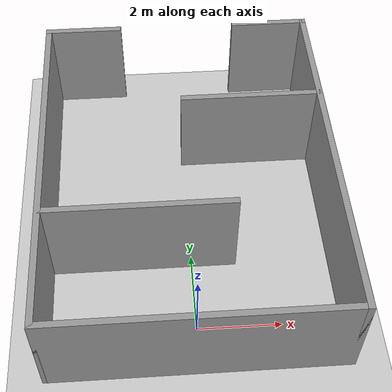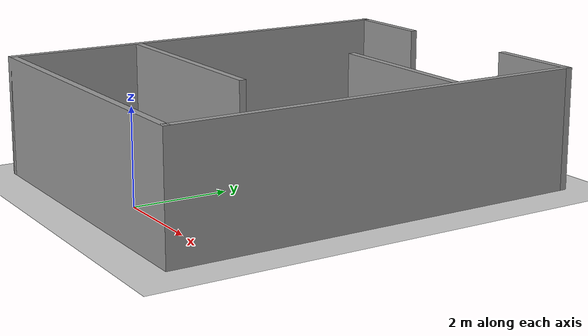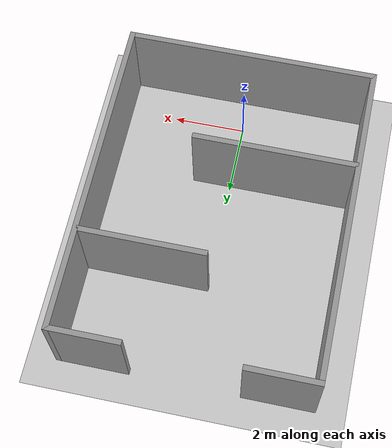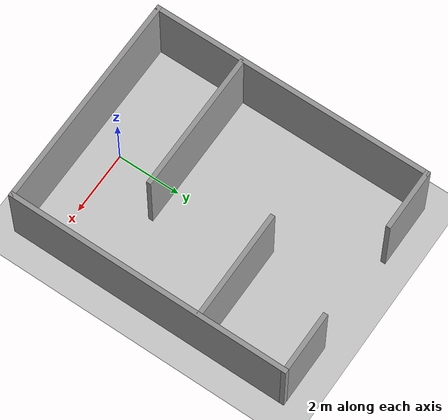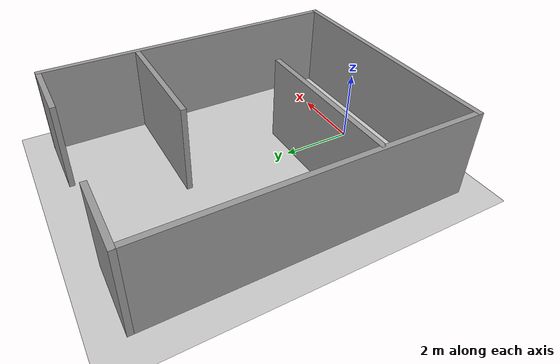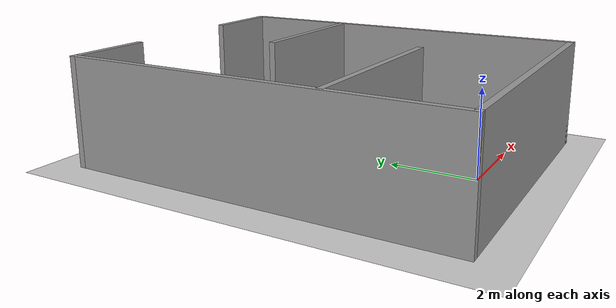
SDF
<sdf version="1.7">
 <world name="default">
  <light name="sun" type="directional">
   <pose>0 0 10 0 -0 0</pose>
   <diffuse>0.8 0.8 0.8 1</diffuse>
   <specular>0.2 0.2 0.2 1</specular>
   <attenuation>
    <range>1000</range>
    <constant>0.9</constant>
    <linear>0.01</linear>
    <quadratic>0.001</quadratic>
   </attenuation>
   <direction>-0.5 0.1 -0.9</direction>
   <spot><inner_angle>0</inner_angle><outer_angle>0</outer_angle><falloff>0</falloff></spot>
  </light>
  <model name="ground_plane">
   <static>1</static>
   <link name="link">
    <collision name="collision">
     <geometry><plane><normal>0 0 1</normal><size>100 100</size></plane></geometry>
     <surface>
      <contact><collide_bitmask>65535</collide_bitmask></contact>
      <friction><ode><mu>100</mu><mu2>50</mu2></ode></friction>
     </surface>
    </collision>
    <visual name="visual">
     <cast_shadows>0</cast_shadows>
     <geometry><plane><normal>0 0 1</normal><size>100 100</size></plane></geometry>
     <material>
      <script><uri>file://media/materials/scripts/gazebo.material</uri><name>Gazebo/Grey</name></script>
     </material>
    </visual>
   </link>
  </model>
  <gravity>0 0 -9.8</gravity>
  <magnetic_field>6e-06 2.3e-05 -4.2e-05</magnetic_field>
  <atmosphere type="adiabatic"/>
  <physics name="default_physics" default="0" type="ode">
   <max_step_size>0.001</max_step_size>
   <real_time_factor>1</real_time_factor>
   <real_time_update_rate>1000</real_time_update_rate>
  </physics>
  <scene><ambient>0.4 0.4 0.4 1</ambient><background>0.7 0.7 0.7 1</background><shadows>1</shadows></scene>
  <audio><device>default</device></audio>
  <spherical_coordinates>
   <surface_model>EARTH_WGS84</surface_model>
   <latitude_deg>0</latitude_deg>
   <longitude_deg>0</longitude_deg>
   <elevation>0</elevation>
   <heading_deg>0</heading_deg>
  </spherical_coordinates>
  <model name="final_project_map">
   <pose>-0.00422 3.4013 0 0 -0 0</pose>
   <link name="Wall_15">
    <collision name="Wall_15_Collision">
     <geometry><box><size>2 0.15 2.5</size></box></geometry>
     <pose>0 0 1.25 0 -0 0</pose>
    </collision>
    <visual name="Wall_15_Visual">
     <pose>0 0 1.25 0 -0 0</pose>
     <geometry><box><size>2 0.15 2.5</size></box></geometry>
     <material>
      <script><uri>file://media/materials/scripts/gazebo.material</uri><name>Gazebo/Grey</name></script>
      <ambient>1 1 1 1</ambient>
     </material>
     <meta><layer>0</layer></meta>
    </visual>
    <pose>-2.5 4.425 0 0 -0 3.14159</pose>
   </link>
   <link name="Wall_16">
    <collision name="Wall_16_Collision">
     <geometry><box><size>9 0.15 2.5</size></box></geometry>
     <pose>0 0 1.25 0 -0 0</pose>
    </collision>
    <visual name="Wall_16_Visual">
     <pose>0 0 1.25 0 -0 0</pose>
     <geometry><box><size>9 0.15 2.5</size></box></geometry>
     <material>
      <script><uri>file://media/materials/scripts/gazebo.material</uri><name>Gazebo/Grey</name></script>
      <ambient>1 1 1 1</ambient>
     </material>
     <meta><layer>0</layer></meta>
    </visual>
    <pose>-3.425 0 0 0 -0 -1.5708</pose>
   </link>
   <link name="Wall_17">
    <collision name="Wall_17_Collision">
     <geometry><box><size>7 0.15 2.5</size></box></geometry>
     <pose>0 0 1.25 0 -0 0</pose>
    </collision>
    <visual name="Wall_17_Visual">
     <pose>0 0 1.25 0 -0 0</pose>
     <geometry><box><size>7 0.15 2.5</size></box></geometry>
     <material>
      <script><uri>file://media/materials/scripts/gazebo.material</uri><name>Gazebo/Grey</name></script>
      <ambient>1 1 1 1</ambient>
     </material>
     <meta><layer>0</layer></meta>
    </visual>
    <pose>0 -4.425 0 0 -0 0</pose>
   </link>
   <link name="Wall_18">
    <collision name="Wall_18_Collision">
     <geometry><box><size>9 0.15 2.5</size></box></geometry>
     <pose>0 0 1.25 0 -0 0</pose>
    </collision>
    <visual name="Wall_18_Visual">
     <pose>0 0 1.25 0 -0 0</pose>
     <geometry><box><size>9 0.15 2.5</size></box></geometry>
     <material>
      <script><uri>file://media/materials/scripts/gazebo.material</uri><name>Gazebo/Grey</name></script>
      <ambient>1 1 1 1</ambient>
     </material>
     <meta><layer>0</layer></meta>
    </visual>
    <pose>3.425 0 0 0 -0 1.5708</pose>
   </link>
   <link name="Wall_19">
    <collision name="Wall_19_Collision">
     <geometry><box><size>2 0.15 2.5</size></box></geometry>
     <pose>0 0 1.25 0 -0 0</pose>
    </collision>
    <visual name="Wall_19_Visual">
     <pose>0 0 1.25 0 -0 0</pose>
     <geometry><box><size>2 0.15 2.5</size></box></geometry>
     <material>
      <script><uri>file://media/materials/scripts/gazebo.material</uri><name>Gazebo/Grey</name></script>
      <ambient>1 1 1 1</ambient>
     </material>
     <meta><layer>0</layer></meta>
    </visual>
    <pose>2.5 4.425 0 0 -0 3.14159</pose>
   </link>
   <link name="Wall_22">
    <collision name="Wall_22_Collision">
     <geometry><box><size>4.5 0.15 2.5</size></box></geometry>
     <pose>0 0 1.25 0 -0 0</pose>
    </collision>
    <visual name="Wall_22_Visual">
     <pose>0 0 1.25 0 -0 0</pose>
     <geometry><box><size>4.5 0.15 2.5</size></box></geometry>
     <material>
      <script><uri>file://media/materials/scripts/gazebo.material</uri><name>Gazebo/Grey</name></script>
      <ambient>1 1 1 1</ambient>
     </material>
     <meta><layer>0</layer></meta>
    </visual>
    <pose>-1.16999 -1.58896 0 0 -0 0</pose>
   </link>
   <link name="Wall_24">
    <collision name="Wall_24_Collision">
     <geometry><box><size>3.5 0.15 2.5</size></box></geometry>
     <pose>-0.5 0 1.25 0 -0 0</pose>
    </collision>
    <visual name="Wall_24_Visual">
     <pose>-0.5 0 1.25 0 -0 0</pose>
     <geometry><box><size>3.5 0.15 2.5</size></box></geometry>
     <material>
      <script><uri>file://media/materials/scripts/gazebo.material</uri><name>Gazebo/Grey</name></script>
      <ambient>1 1 1 1</ambient>
     </material>
     <meta><layer>0</layer></meta>
    </visual>
    <pose>1.19794 1.68955 0 0 -0 3.14159</pose>
   </link>
   <static>1</static>
  </model>
 </world>
</sdf>
